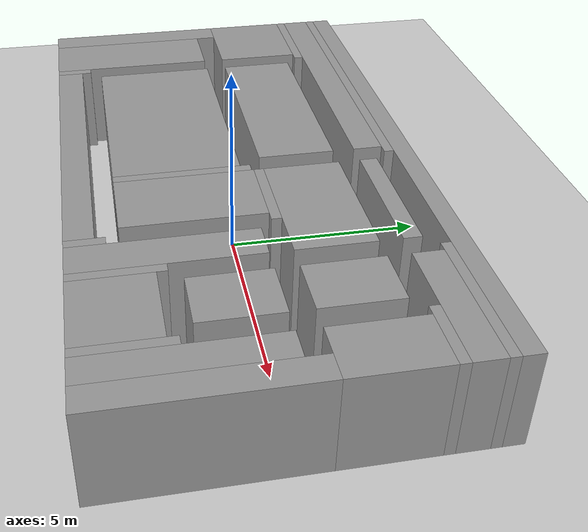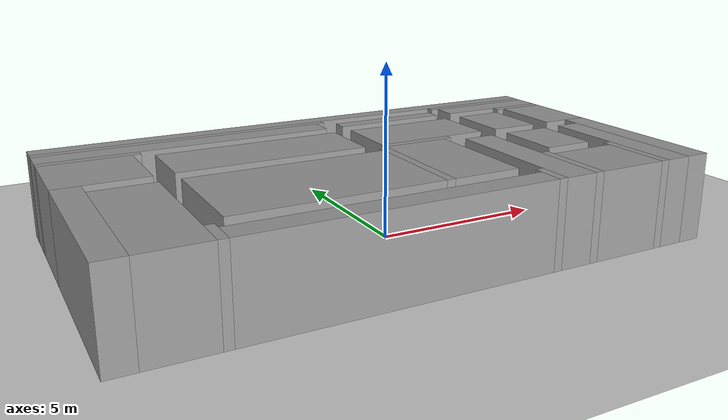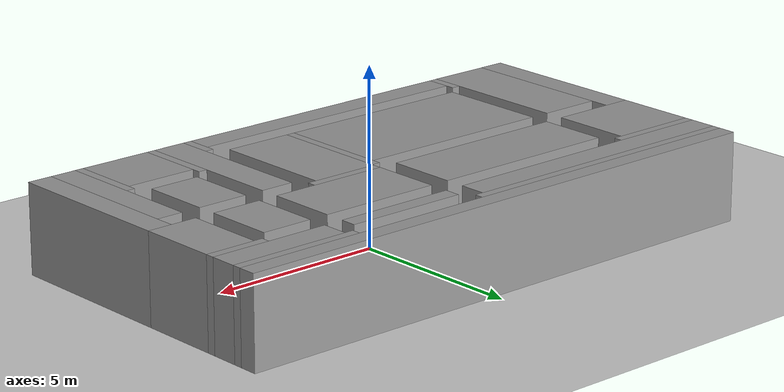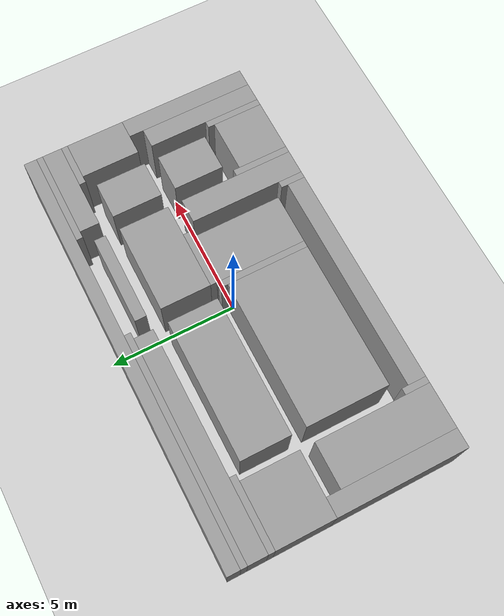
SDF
<?xml version='1.0'?>
<sdf version='1.6'>
  <world name='default'>
    <include><uri>model://ground_plane</uri></include>
    <include><uri>model://sun</uri></include>
    <physics type='ode'>
      <max_step_size>0.001</max_step_size>
      <real_time_factor>1</real_time_factor>
      <real_time_update_rate>1000</real_time_update_rate>
    </physics>
    <model name='deceptive_fork_walls'>
      <static>1</static>
      <pose>0 0 0 0 0 0</pose>
    <link name='wall_0'>
      <collision name='wall_0_collision'>
        <pose>-0.500 4.500 1.250 0 0 0</pose>
        <geometry><box><size>16.500 0.500 2.50</size></box></geometry>
      </collision>
      <visual name='wall_0_visual'>
        <pose>-0.500 4.500 1.250 0 0 0</pose>
        <geometry><box><size>16.500 0.500 2.50</size></box></geometry>
        <material>
          <script>
            <uri>file://media/materials/scripts/gazebo.material</uri>
            <name>Gazebo/Grey</name>
          </script>
        </material>
      </visual>
    </link>
    <link name='wall_1'>
      <collision name='wall_1_collision'>
        <pose>-4.375 4.125 1.250 0 0 0</pose>
        <geometry><box><size>8.750 0.250 2.50</size></box></geometry>
      </collision>
      <visual name='wall_1_visual'>
        <pose>-4.375 4.125 1.250 0 0 0</pose>
        <geometry><box><size>8.750 0.250 2.50</size></box></geometry>
        <material>
          <script>
            <uri>file://media/materials/scripts/gazebo.material</uri>
            <name>Gazebo/Grey</name>
          </script>
        </material>
      </visual>
    </link>
    <link name='wall_2'>
      <collision name='wall_2_collision'>
        <pose>5.900 4.125 1.250 0 0 0</pose>
        <geometry><box><size>3.700 0.250 2.50</size></box></geometry>
      </collision>
      <visual name='wall_2_visual'>
        <pose>5.900 4.125 1.250 0 0 0</pose>
        <geometry><box><size>3.700 0.250 2.50</size></box></geometry>
        <material>
          <script>
            <uri>file://media/materials/scripts/gazebo.material</uri>
            <name>Gazebo/Grey</name>
          </script>
        </material>
      </visual>
    </link>
    <link name='wall_3'>
      <collision name='wall_3_collision'>
        <pose>-4.500 3.625 1.250 0 0 0</pose>
        <geometry><box><size>8.500 0.750 2.50</size></box></geometry>
      </collision>
      <visual name='wall_3_visual'>
        <pose>-4.500 3.625 1.250 0 0 0</pose>
        <geometry><box><size>8.500 0.750 2.50</size></box></geometry>
        <material>
          <script>
            <uri>file://media/materials/scripts/gazebo.material</uri>
            <name>Gazebo/Grey</name>
          </script>
        </material>
      </visual>
    </link>
    <link name='wall_4'>
      <collision name='wall_4_collision'>
        <pose>6.025 3.625 1.250 0 0 0</pose>
        <geometry><box><size>3.450 0.750 2.50</size></box></geometry>
      </collision>
      <visual name='wall_4_visual'>
        <pose>6.025 3.625 1.250 0 0 0</pose>
        <geometry><box><size>3.450 0.750 2.50</size></box></geometry>
        <material>
          <script>
            <uri>file://media/materials/scripts/gazebo.material</uri>
            <name>Gazebo/Grey</name>
          </script>
        </material>
      </visual>
    </link>
    <link name='wall_5'>
      <collision name='wall_5_collision'>
        <pose>2.025 3.475 1.250 0 0 0</pose>
        <geometry><box><size>3.450 0.450 2.50</size></box></geometry>
      </collision>
      <visual name='wall_5_visual'>
        <pose>2.025 3.475 1.250 0 0 0</pose>
        <geometry><box><size>3.450 0.450 2.50</size></box></geometry>
        <material>
          <script>
            <uri>file://media/materials/scripts/gazebo.material</uri>
            <name>Gazebo/Grey</name>
          </script>
        </material>
      </visual>
    </link>
    <link name='wall_6'>
      <collision name='wall_6_collision'>
        <pose>-7.375 3.125 1.250 0 0 0</pose>
        <geometry><box><size>2.750 0.250 2.50</size></box></geometry>
      </collision>
      <visual name='wall_6_visual'>
        <pose>-7.375 3.125 1.250 0 0 0</pose>
        <geometry><box><size>2.750 0.250 2.50</size></box></geometry>
        <material>
          <script>
            <uri>file://media/materials/scripts/gazebo.material</uri>
            <name>Gazebo/Grey</name>
          </script>
        </material>
      </visual>
    </link>
    <link name='wall_7'>
      <collision name='wall_7_collision'>
        <pose>6.900 3.125 1.250 0 0 0</pose>
        <geometry><box><size>1.700 0.250 2.50</size></box></geometry>
      </collision>
      <visual name='wall_7_visual'>
        <pose>6.900 3.125 1.250 0 0 0</pose>
        <geometry><box><size>1.700 0.250 2.50</size></box></geometry>
        <material>
          <script>
            <uri>file://media/materials/scripts/gazebo.material</uri>
            <name>Gazebo/Grey</name>
          </script>
        </material>
      </visual>
    </link>
    <link name='wall_8'>
      <collision name='wall_8_collision'>
        <pose>-7.500 1.875 1.250 0 0 0</pose>
        <geometry><box><size>2.500 2.250 2.50</size></box></geometry>
      </collision>
      <visual name='wall_8_visual'>
        <pose>-7.500 1.875 1.250 0 0 0</pose>
        <geometry><box><size>2.500 2.250 2.50</size></box></geometry>
        <material>
          <script>
            <uri>file://media/materials/scripts/gazebo.material</uri>
            <name>Gazebo/Grey</name>
          </script>
        </material>
      </visual>
    </link>
    <link name='wall_9'>
      <collision name='wall_9_collision'>
        <pose>7.025 1.875 1.250 0 0 0</pose>
        <geometry><box><size>1.450 2.250 2.50</size></box></geometry>
      </collision>
      <visual name='wall_9_visual'>
        <pose>7.025 1.875 1.250 0 0 0</pose>
        <geometry><box><size>1.450 2.250 2.50</size></box></geometry>
        <material>
          <script>
            <uri>file://media/materials/scripts/gazebo.material</uri>
            <name>Gazebo/Grey</name>
          </script>
        </material>
      </visual>
    </link>
    <link name='wall_10'>
      <collision name='wall_10_collision'>
        <pose>-2.975 1.725 1.250 0 0 0</pose>
        <geometry><box><size>5.450 1.950 2.50</size></box></geometry>
      </collision>
      <visual name='wall_10_visual'>
        <pose>-2.975 1.725 1.250 0 0 0</pose>
        <geometry><box><size>5.450 1.950 2.50</size></box></geometry>
        <material>
          <script>
            <uri>file://media/materials/scripts/gazebo.material</uri>
            <name>Gazebo/Grey</name>
          </script>
        </material>
      </visual>
    </link>
    <link name='wall_11'>
      <collision name='wall_11_collision'>
        <pose>2.025 1.725 1.250 0 0 0</pose>
        <geometry><box><size>3.450 1.950 2.50</size></box></geometry>
      </collision>
      <visual name='wall_11_visual'>
        <pose>2.025 1.725 1.250 0 0 0</pose>
        <geometry><box><size>3.450 1.950 2.50</size></box></geometry>
        <material>
          <script>
            <uri>file://media/materials/scripts/gazebo.material</uri>
            <name>Gazebo/Grey</name>
          </script>
        </material>
      </visual>
    </link>
    <link name='wall_12'>
      <collision name='wall_12_collision'>
        <pose>5.025 1.725 1.250 0 0 0</pose>
        <geometry><box><size>1.450 1.950 2.50</size></box></geometry>
      </collision>
      <visual name='wall_12_visual'>
        <pose>5.025 1.725 1.250 0 0 0</pose>
        <geometry><box><size>1.450 1.950 2.50</size></box></geometry>
        <material>
          <script>
            <uri>file://media/materials/scripts/gazebo.material</uri>
            <name>Gazebo/Grey</name>
          </script>
        </material>
      </visual>
    </link>
    <link name='wall_13'>
      <collision name='wall_13_collision'>
        <pose>-8.375 -1.750 1.250 0 0 0</pose>
        <geometry><box><size>0.750 5.000 2.50</size></box></geometry>
      </collision>
      <visual name='wall_13_visual'>
        <pose>-8.375 -1.750 1.250 0 0 0</pose>
        <geometry><box><size>0.750 5.000 2.50</size></box></geometry>
        <material>
          <script>
            <uri>file://media/materials/scripts/gazebo.material</uri>
            <name>Gazebo/Grey</name>
          </script>
        </material>
      </visual>
    </link>
    <link name='wall_14'>
      <collision name='wall_14_collision'>
        <pose>1.400 0.625 1.250 0 0 0</pose>
        <geometry><box><size>2.200 0.250 2.50</size></box></geometry>
      </collision>
      <visual name='wall_14_visual'>
        <pose>1.400 0.625 1.250 0 0 0</pose>
        <geometry><box><size>2.200 0.250 2.50</size></box></geometry>
        <material>
          <script>
            <uri>file://media/materials/scripts/gazebo.material</uri>
            <name>Gazebo/Grey</name>
          </script>
        </material>
      </visual>
    </link>
    <link name='wall_15'>
      <collision name='wall_15_collision'>
        <pose>7.400 -1.750 1.250 0 0 0</pose>
        <geometry><box><size>0.700 5.000 2.50</size></box></geometry>
      </collision>
      <visual name='wall_15_visual'>
        <pose>7.400 -1.750 1.250 0 0 0</pose>
        <geometry><box><size>0.700 5.000 2.50</size></box></geometry>
        <material>
          <script>
            <uri>file://media/materials/scripts/gazebo.material</uri>
            <name>Gazebo/Grey</name>
          </script>
        </material>
      </visual>
    </link>
    <link name='wall_16'>
      <collision name='wall_16_collision'>
        <pose>1.275 -1.250 1.250 0 0 0</pose>
        <geometry><box><size>1.950 3.500 2.50</size></box></geometry>
      </collision>
      <visual name='wall_16_visual'>
        <pose>1.275 -1.250 1.250 0 0 0</pose>
        <geometry><box><size>1.950 3.500 2.50</size></box></geometry>
        <material>
          <script>
            <uri>file://media/materials/scripts/gazebo.material</uri>
            <name>Gazebo/Grey</name>
          </script>
        </material>
      </visual>
    </link>
    <link name='wall_17'>
      <collision name='wall_17_collision'>
        <pose>0.175 -1.275 1.250 0 0 0</pose>
        <geometry><box><size>0.250 3.450 2.50</size></box></geometry>
      </collision>
      <visual name='wall_17_visual'>
        <pose>0.175 -1.275 1.250 0 0 0</pose>
        <geometry><box><size>0.250 3.450 2.50</size></box></geometry>
        <material>
          <script>
            <uri>file://media/materials/scripts/gazebo.material</uri>
            <name>Gazebo/Grey</name>
          </script>
        </material>
      </visual>
    </link>
    <link name='wall_18'>
      <collision name='wall_18_collision'>
        <pose>-7.125 -2.025 1.250 0 0 0</pose>
        <geometry><box><size>1.750 4.450 2.50</size></box></geometry>
      </collision>
      <visual name='wall_18_visual'>
        <pose>-7.125 -2.025 1.250 0 0 0</pose>
        <geometry><box><size>1.750 4.450 2.50</size></box></geometry>
        <material>
          <script>
            <uri>file://media/materials/scripts/gazebo.material</uri>
            <name>Gazebo/Grey</name>
          </script>
        </material>
      </visual>
    </link>
    <link name='wall_19'>
      <collision name='wall_19_collision'>
        <pose>-2.825 -1.400 1.250 0 0 0</pose>
        <geometry><box><size>5.750 3.200 2.50</size></box></geometry>
      </collision>
      <visual name='wall_19_visual'>
        <pose>-2.825 -1.400 1.250 0 0 0</pose>
        <geometry><box><size>5.750 3.200 2.50</size></box></geometry>
        <material>
          <script>
            <uri>file://media/materials/scripts/gazebo.material</uri>
            <name>Gazebo/Grey</name>
          </script>
        </material>
      </visual>
    </link>
    <link name='wall_20'>
      <collision name='wall_20_collision'>
        <pose>3.275 -2.025 1.250 0 0 0</pose>
        <geometry><box><size>0.950 4.450 2.50</size></box></geometry>
      </collision>
      <visual name='wall_20_visual'>
        <pose>3.275 -2.025 1.250 0 0 0</pose>
        <geometry><box><size>0.950 4.450 2.50</size></box></geometry>
        <material>
          <script>
            <uri>file://media/materials/scripts/gazebo.material</uri>
            <name>Gazebo/Grey</name>
          </script>
        </material>
      </visual>
    </link>
    <link name='wall_21'>
      <collision name='wall_21_collision'>
        <pose>5.025 -0.775 1.250 0 0 0</pose>
        <geometry><box><size>1.450 1.950 2.50</size></box></geometry>
      </collision>
      <visual name='wall_21_visual'>
        <pose>5.025 -0.775 1.250 0 0 0</pose>
        <geometry><box><size>1.450 1.950 2.50</size></box></geometry>
        <material>
          <script>
            <uri>file://media/materials/scripts/gazebo.material</uri>
            <name>Gazebo/Grey</name>
          </script>
        </material>
      </visual>
    </link>
    <link name='wall_22'>
      <collision name='wall_22_collision'>
        <pose>6.675 -2.025 1.250 0 0 0</pose>
        <geometry><box><size>0.750 4.450 2.50</size></box></geometry>
      </collision>
      <visual name='wall_22_visual'>
        <pose>6.675 -2.025 1.250 0 0 0</pose>
        <geometry><box><size>0.750 4.450 2.50</size></box></geometry>
        <material>
          <script>
            <uri>file://media/materials/scripts/gazebo.material</uri>
            <name>Gazebo/Grey</name>
          </script>
        </material>
      </visual>
    </link>
    <link name='wall_23'>
      <collision name='wall_23_collision'>
        <pose>3.875 -3.150 1.250 0 0 0</pose>
        <geometry><box><size>0.250 2.200 2.50</size></box></geometry>
      </collision>
      <visual name='wall_23_visual'>
        <pose>3.875 -3.150 1.250 0 0 0</pose>
        <geometry><box><size>0.250 2.200 2.50</size></box></geometry>
        <material>
          <script>
            <uri>file://media/materials/scripts/gazebo.material</uri>
            <name>Gazebo/Grey</name>
          </script>
        </material>
      </visual>
    </link>
    <link name='wall_24'>
      <collision name='wall_24_collision'>
        <pose>6.175 -3.150 1.250 0 0 0</pose>
        <geometry><box><size>0.250 2.200 2.50</size></box></geometry>
      </collision>
      <visual name='wall_24_visual'>
        <pose>6.175 -3.150 1.250 0 0 0</pose>
        <geometry><box><size>0.250 2.200 2.50</size></box></geometry>
        <material>
          <script>
            <uri>file://media/materials/scripts/gazebo.material</uri>
            <name>Gazebo/Grey</name>
          </script>
        </material>
      </visual>
    </link>
    <link name='wall_25'>
      <collision name='wall_25_collision'>
        <pose>5.025 -3.275 1.250 0 0 0</pose>
        <geometry><box><size>2.050 1.950 2.50</size></box></geometry>
      </collision>
      <visual name='wall_25_visual'>
        <pose>5.025 -3.275 1.250 0 0 0</pose>
        <geometry><box><size>2.050 1.950 2.50</size></box></geometry>
        <material>
          <script>
            <uri>file://media/materials/scripts/gazebo.material</uri>
            <name>Gazebo/Grey</name>
          </script>
        </material>
      </visual>
    </link>
    <link name='wall_26'>
      <collision name='wall_26_collision'>
        <pose>-6.125 -3.775 1.250 0 0 0</pose>
        <geometry><box><size>0.250 0.950 2.50</size></box></geometry>
      </collision>
      <visual name='wall_26_visual'>
        <pose>-6.125 -3.775 1.250 0 0 0</pose>
        <geometry><box><size>0.250 0.950 2.50</size></box></geometry>
        <material>
          <script>
            <uri>file://media/materials/scripts/gazebo.material</uri>
            <name>Gazebo/Grey</name>
          </script>
        </material>
      </visual>
    </link>
    <link name='wall_27'>
      <collision name='wall_27_collision'>
        <pose>2.675 -3.775 1.250 0 0 0</pose>
        <geometry><box><size>0.250 0.950 2.50</size></box></geometry>
      </collision>
      <visual name='wall_27_visual'>
        <pose>2.675 -3.775 1.250 0 0 0</pose>
        <geometry><box><size>0.250 0.950 2.50</size></box></geometry>
        <material>
          <script>
            <uri>file://media/materials/scripts/gazebo.material</uri>
            <name>Gazebo/Grey</name>
          </script>
        </material>
      </visual>
    </link>
    <link name='wall_28'>
      <collision name='wall_28_collision'>
        <pose>-1.725 -3.900 1.250 0 0 0</pose>
        <geometry><box><size>8.550 0.700 2.50</size></box></geometry>
      </collision>
      <visual name='wall_28_visual'>
        <pose>-1.725 -3.900 1.250 0 0 0</pose>
        <geometry><box><size>8.550 0.700 2.50</size></box></geometry>
        <material>
          <script>
            <uri>file://media/materials/scripts/gazebo.material</uri>
            <name>Gazebo/Grey</name>
          </script>
        </material>
      </visual>
    </link>
    </model>
  </world>
</sdf>
